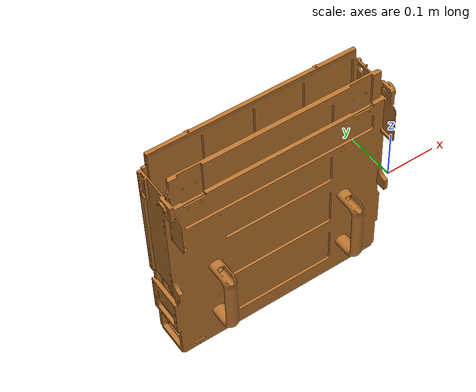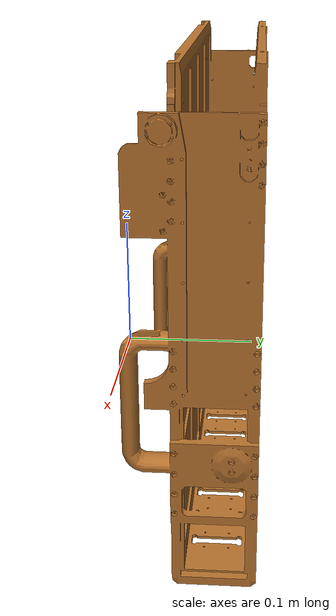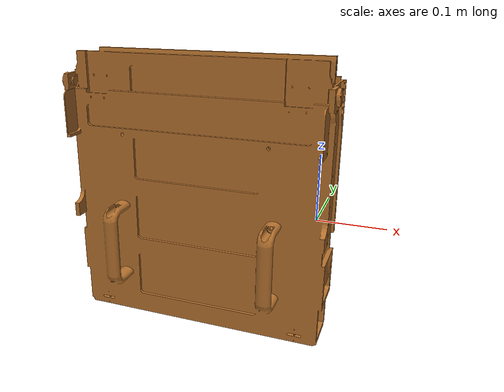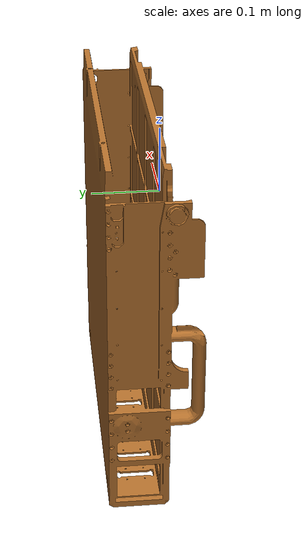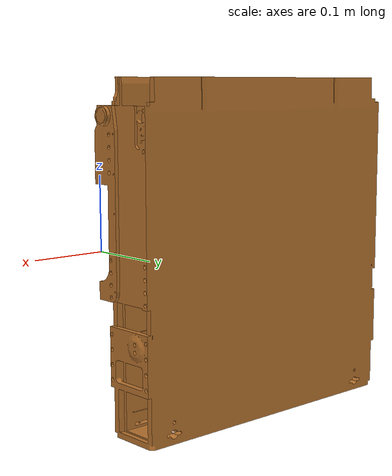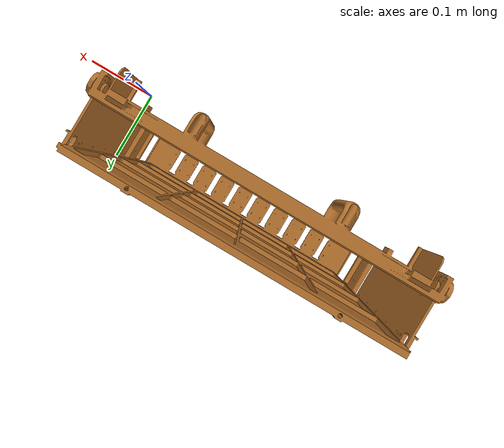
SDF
<?xml version="1.0"?>
<sdf version="1.9">
  <model name="shielding_module">
    <link name="shielding_module_link">
      <inertial>
        <pose>-0.20849 0.06355 -0.01944 0 0 0</pose>
        <mass>19.0</mass>
        <inertia>
          <ixx>3.993602428e-01</ixx>
          <ixy>2.092340000e-05</ixy>
          <ixz>1.099317000e-05</ixz>
          <iyy>7.891516666e-01</iyy>
          <iyz>4.086532080e-03</iyz>
          <izz>4.349741182e-01</izz>
        </inertia>
      </inertial>

      <collision name="envelope">
        <pose>-0.208500 0.043503 -0.007500 0 0 0</pose>
        <geometry>
          <box><size>0.4546 0.13099 0.4650</size></box>
        </geometry>
        <surface>
          <friction>
            <ode><mu>0.6</mu><mu2>0.6</mu2></ode>
          </friction>
        </surface>
      </collision>

      <visual name="visual">
        <geometry>
          <mesh>
            <uri>model://cs625_task/shielding_module/meshes/shielding_module.stl</uri>
          </mesh>
        </geometry>
        <material>
          <ambient>0.72 0.45 0.18 1</ambient>
          <diffuse>0.72 0.45 0.18 1</diffuse>
        </material>
      </visual>

      <!-- Physical contact evidence for the insertion episode.  Same mechanism
           as the occluder and target sensors in the P7 worlds. -->
      <sensor name="module_contact" type="contact">
        <contact>
          <collision>envelope</collision>
        </contact>
        <always_on>true</always_on>
        <update_rate>100</update_rate>
        <topic>/cs625_task/contacts/module</topic>
      </sensor>
    </link>
  </model>
</sdf>
